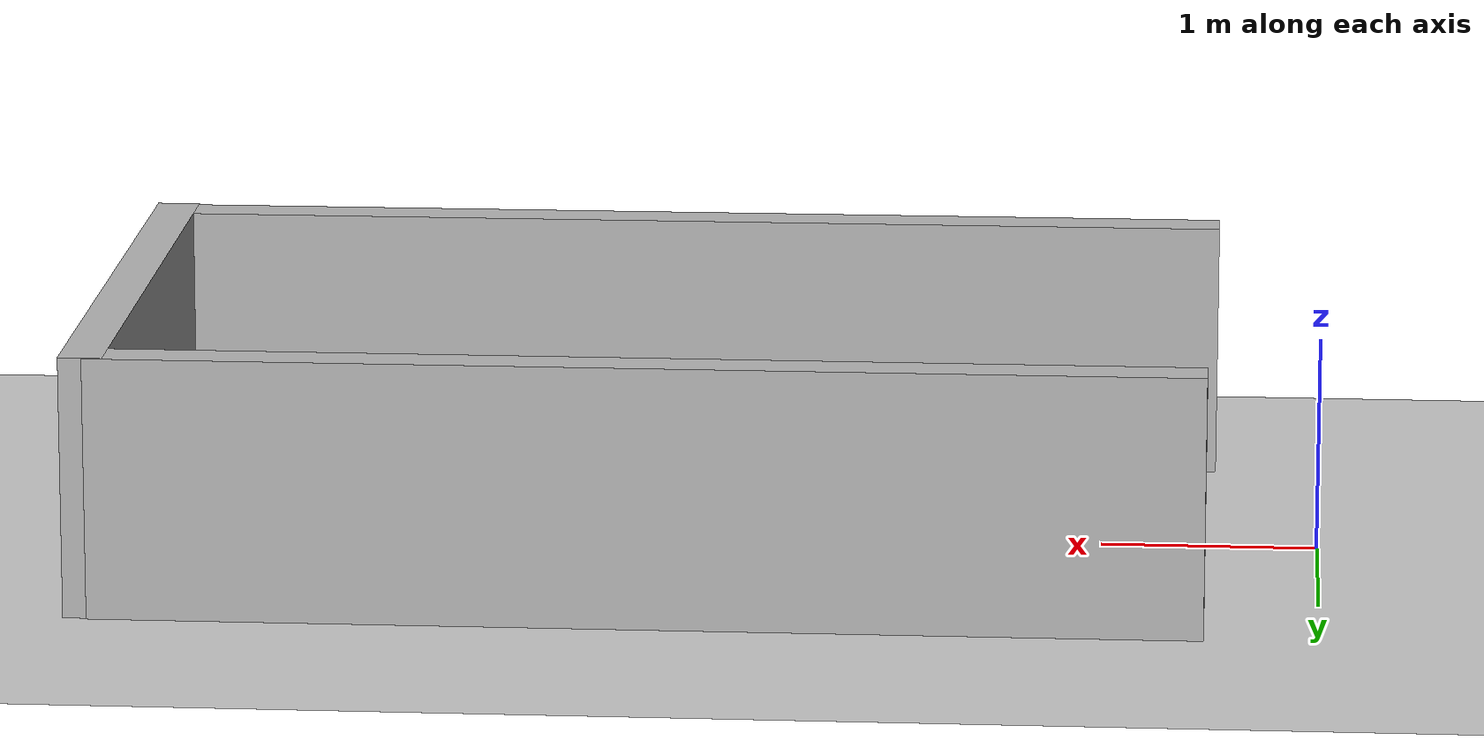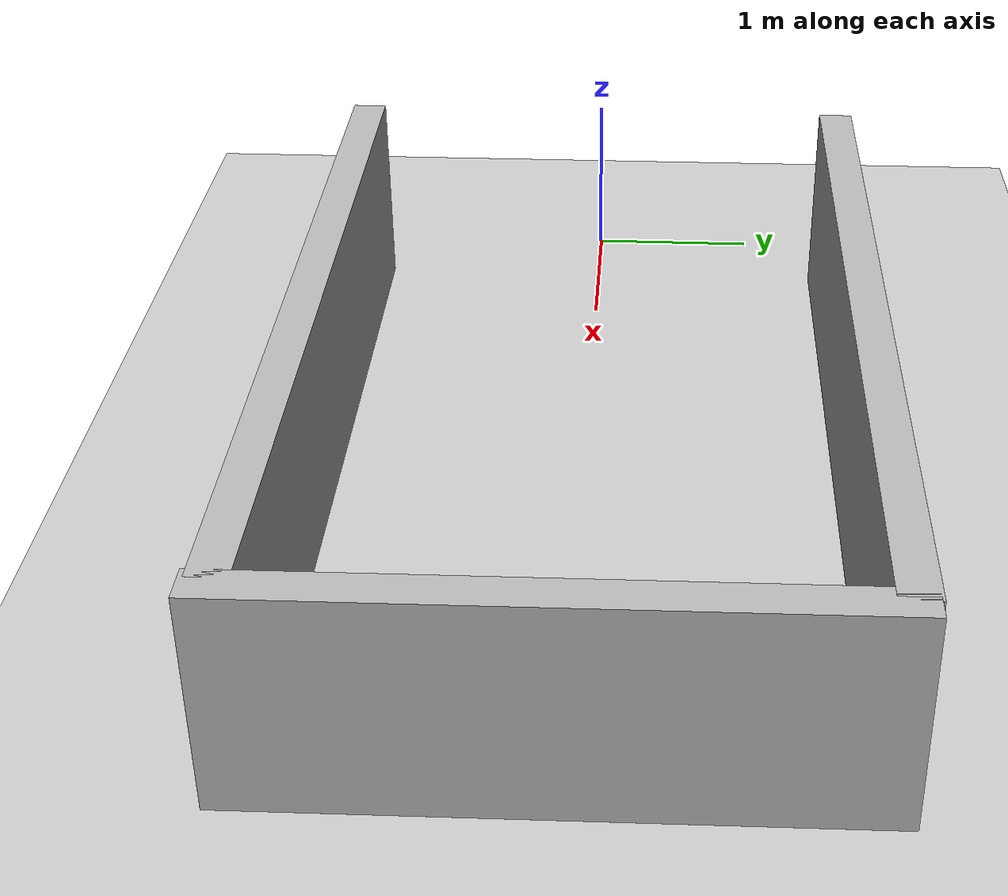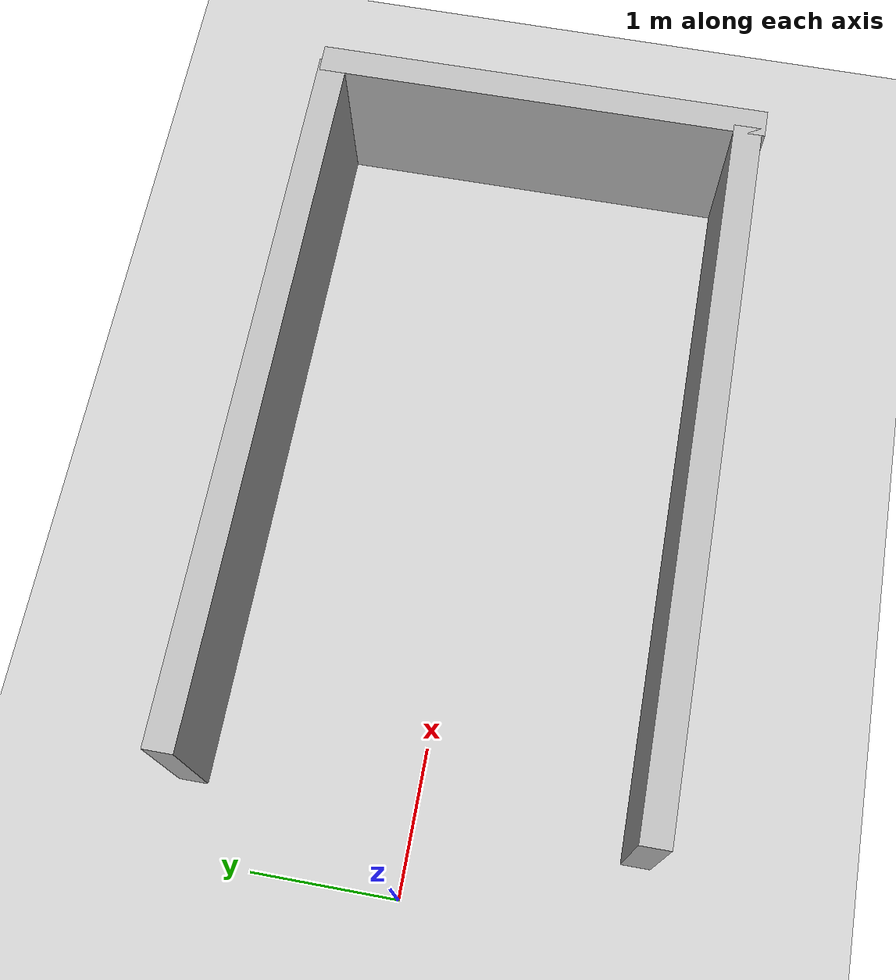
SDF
<?xml version="1.0"?>
<sdf version="1.6">
  <world name="v2-04g-r4-r1-maneuver-s5103">
    <gravity>0 0 -9.81</gravity>
    <physics name="v2_deterministic" type="ode">
      <max_step_size>0.002</max_step_size>
      <real_time_update_rate>500</real_time_update_rate>
    </physics>
    <include>
      <uri>model://sun</uri>
    </include>
    <include>
      <uri>model://ground_plane</uri>
    </include>
    <model name="bay-left">
      <static>true</static>
      <pose>3.009892275 1.517933711 0.600000000 0 0 0.001416268</pose>
      <link name="link">
        <collision name="collision">
          <geometry>
            <box>
              <size>5.000000 0.200000 1.200000</size>
            </box>
          </geometry>
        </collision>
        <visual name="visual">
          <geometry>
            <box>
              <size>5.000000 0.200000 1.200000</size>
            </box>
          </geometry>
        </visual>
      </link>
    </model>
    <model name="bay-right">
      <static>true</static>
      <pose>2.983317912 -1.479878358 0.600000000 0 0 0.004530273</pose>
      <link name="link">
        <collision name="collision">
          <geometry>
            <box>
              <size>5.000000 0.200000 1.200000</size>
            </box>
          </geometry>
        </collision>
        <visual name="visual">
          <geometry>
            <box>
              <size>5.000000 0.200000 1.200000</size>
            </box>
          </geometry>
        </visual>
      </link>
    </model>
    <model name="bay-back">
      <static>true</static>
      <pose>5.523074820 0.009383213 0.600000000 0 0 0.003378214</pose>
      <link name="link">
        <collision name="collision">
          <geometry>
            <box>
              <size>0.200000 3.200000 1.200000</size>
            </box>
          </geometry>
        </collision>
        <visual name="visual">
          <geometry>
            <box>
              <size>0.200000 3.200000 1.200000</size>
            </box>
          </geometry>
        </visual>
      </link>
    </model>
  </world>
</sdf>
